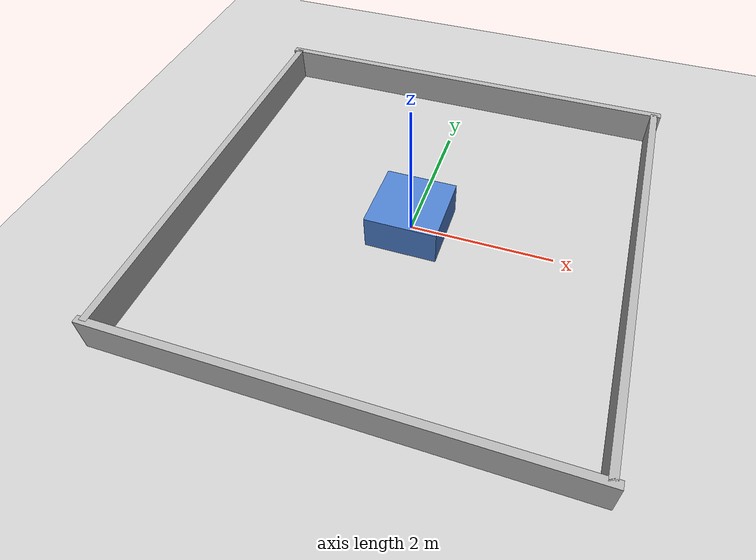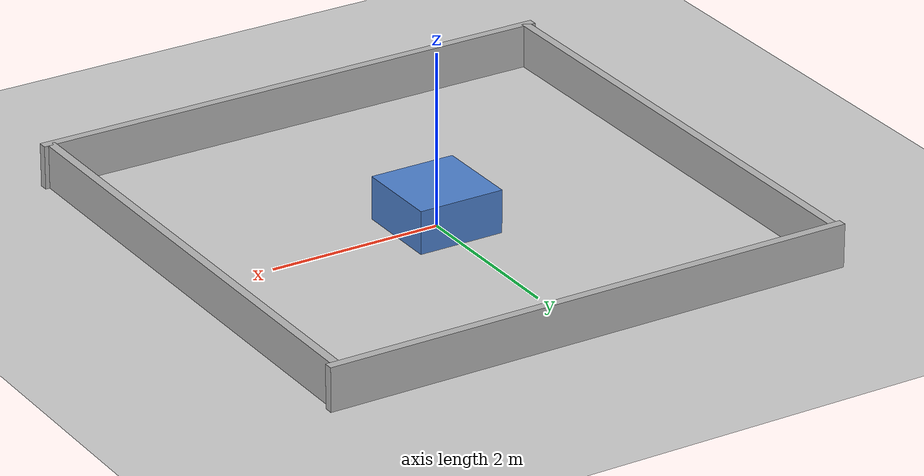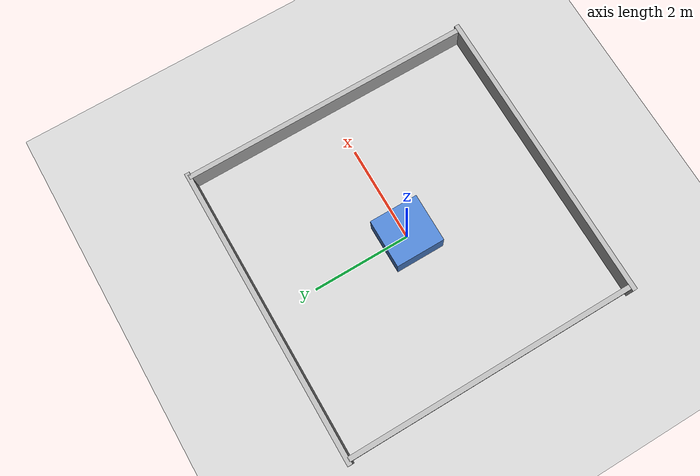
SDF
<?xml version="1.0" ?>
<!--
  Simple room: 6m x 6m with 4 walls and one box obstacle in the middle.
-->
<sdf version="1.8">
  <world name="simple_room">
    <physics name="1ms" type="ignored">
      <max_step_size>0.001</max_step_size>
      <real_time_factor>1.0</real_time_factor>
    </physics>

    <plugin filename="libignition-gazebo-physics-system.so"
            name="ignition::gazebo::systems::Physics"/>
    <plugin filename="libignition-gazebo-sensors-system.so"
            name="ignition::gazebo::systems::Sensors">
      <render_engine>ogre2</render_engine>
    </plugin>
    <plugin filename="libignition-gazebo-scene-broadcaster-system.so"
            name="ignition::gazebo::systems::SceneBroadcaster"/>
    <plugin filename="libignition-gazebo-user-commands-system.so"
            name="ignition::gazebo::systems::UserCommands"/>
    <plugin filename="libignition-gazebo-contact-system.so"
            name="ignition::gazebo::systems::Contact"/>

    <light type="directional" name="sun">
      <cast_shadows>true</cast_shadows>
      <pose>0 0 10 0 0 0</pose>
      <diffuse>0.8 0.8 0.8 1</diffuse>
      <specular>0.2 0.2 0.2 1</specular>
      <attenuation>
        <range>1000</range>
        <constant>0.9</constant>
        <linear>0.01</linear>
        <quadratic>0.001</quadratic>
      </attenuation>
      <direction>-0.5 0.1 -0.9</direction>
    </light>

    <!-- Ground -->
    <model name="ground_plane">
      <static>true</static>
      <link name="link">
        <collision name="collision">
          <geometry><plane><normal>0 0 1</normal><size>100 100</size></plane></geometry>
        </collision>
        <visual name="visual">
          <geometry><plane><normal>0 0 1</normal><size>100 100</size></plane></geometry>
          <material>
            <ambient>0.8 0.8 0.8 1</ambient>
            <diffuse>0.8 0.8 0.8 1</diffuse>
          </material>
        </visual>
      </link>
    </model>

    <!-- North wall -->
    <model name="wall_north">
      <static>true</static>
      <pose>0 3 0.25 0 0 0</pose>
      <link name="link">
        <collision name="c"><geometry><box><size>6.2 0.1 0.5</size></box></geometry></collision>
        <visual name="v"><geometry><box><size>6.2 0.1 0.5</size></box></geometry>
          <material><ambient>0.5 0.5 0.5 1</ambient><diffuse>0.7 0.7 0.7 1</diffuse></material>
        </visual>
      </link>
    </model>

    <!-- South wall -->
    <model name="wall_south">
      <static>true</static>
      <pose>0 -3 0.25 0 0 0</pose>
      <link name="link">
        <collision name="c"><geometry><box><size>6.2 0.1 0.5</size></box></geometry></collision>
        <visual name="v"><geometry><box><size>6.2 0.1 0.5</size></box></geometry>
          <material><ambient>0.5 0.5 0.5 1</ambient><diffuse>0.7 0.7 0.7 1</diffuse></material>
        </visual>
      </link>
    </model>

    <!-- East wall -->
    <model name="wall_east">
      <static>true</static>
      <pose>3 0 0.25 0 0 0</pose>
      <link name="link">
        <collision name="c"><geometry><box><size>0.1 6.0 0.5</size></box></geometry></collision>
        <visual name="v"><geometry><box><size>0.1 6.0 0.5</size></box></geometry>
          <material><ambient>0.5 0.5 0.5 1</ambient><diffuse>0.7 0.7 0.7 1</diffuse></material>
        </visual>
      </link>
    </model>

    <!-- West wall -->
    <model name="wall_west">
      <static>true</static>
      <pose>-3 0 0.25 0 0 0</pose>
      <link name="link">
        <collision name="c"><geometry><box><size>0.1 6.0 0.5</size></box></geometry></collision>
        <visual name="v"><geometry><box><size>0.1 6.0 0.5</size></box></geometry>
          <material><ambient>0.5 0.5 0.5 1</ambient><diffuse>0.7 0.7 0.7 1</diffuse></material>
        </visual>
      </link>
    </model>

    <!-- Center obstacle: a box -->
    <model name="center_box">
      <static>true</static>
      <pose>0 0 0.25 0 0 0</pose>
      <link name="link">
        <collision name="c"><geometry><box><size>1.0 1.0 0.5</size></box></geometry></collision>
        <visual name="v"><geometry><box><size>1.0 1.0 0.5</size></box></geometry>
          <material><ambient>0.2 0.4 0.7 1</ambient><diffuse>0.3 0.5 0.8 1</diffuse></material>
        </visual>
      </link>
    </model>

  </world>
</sdf>
